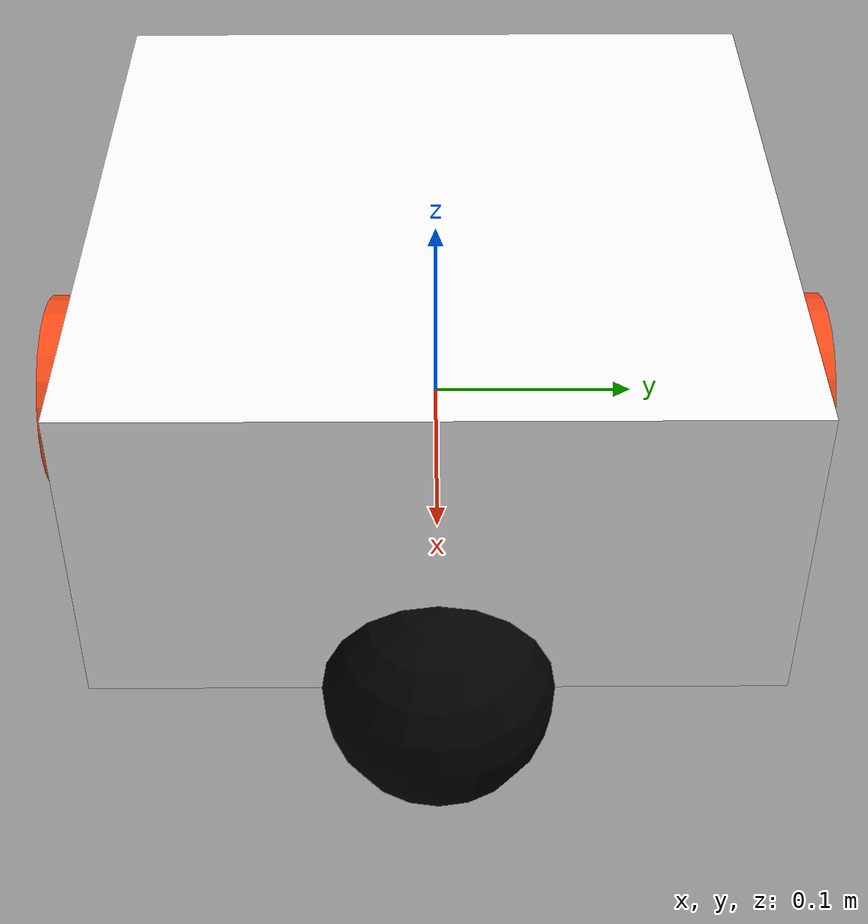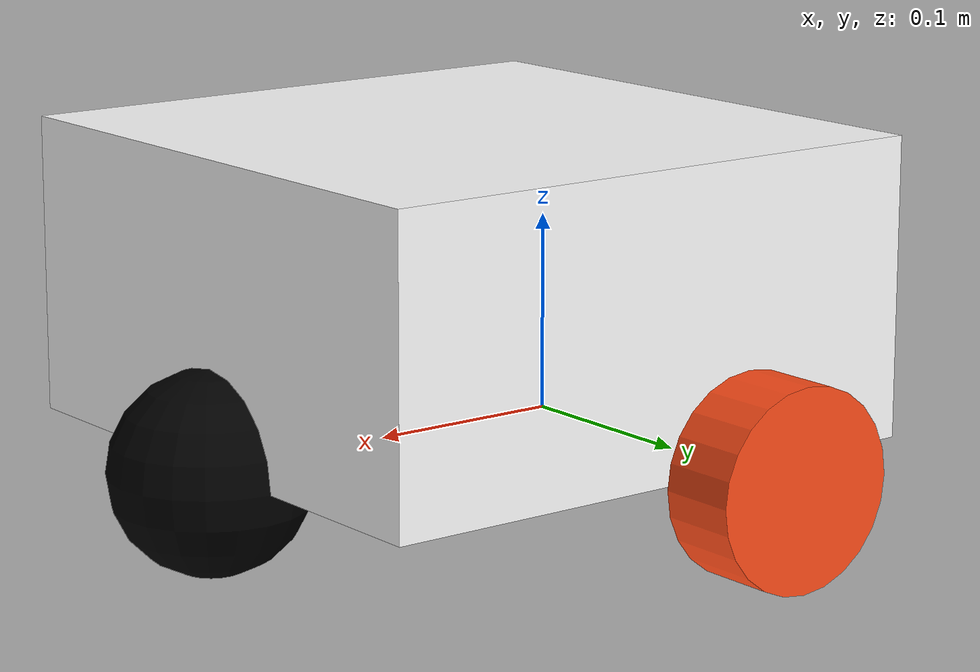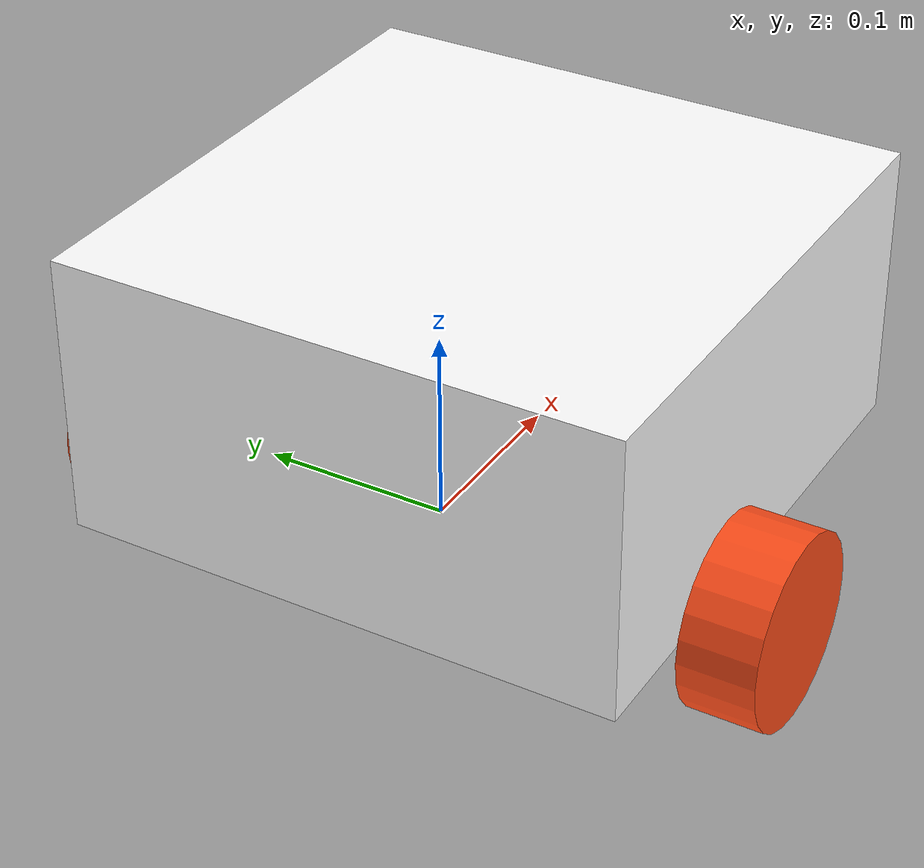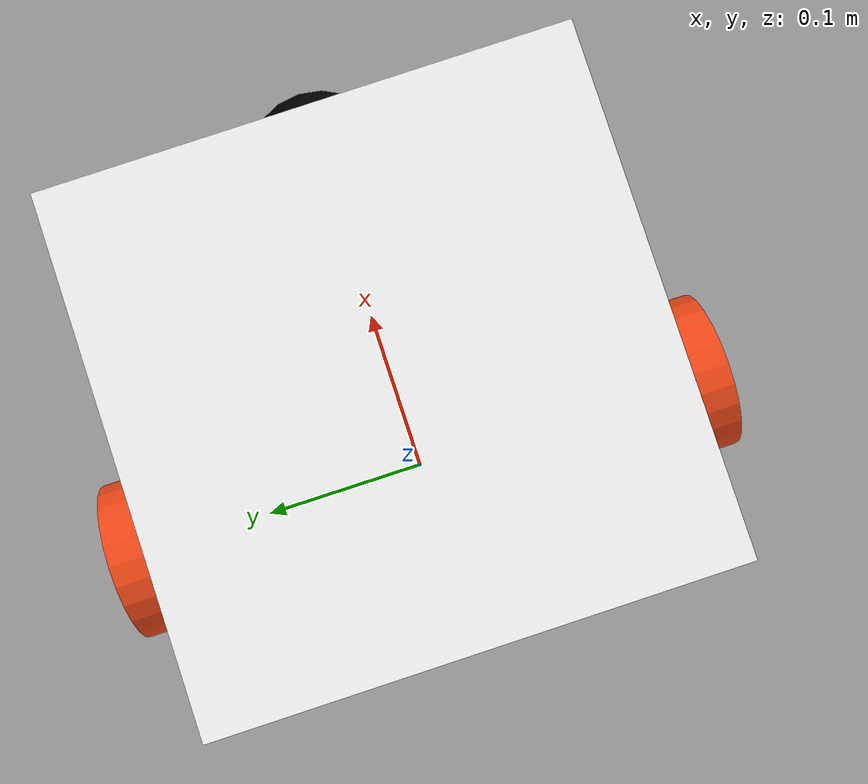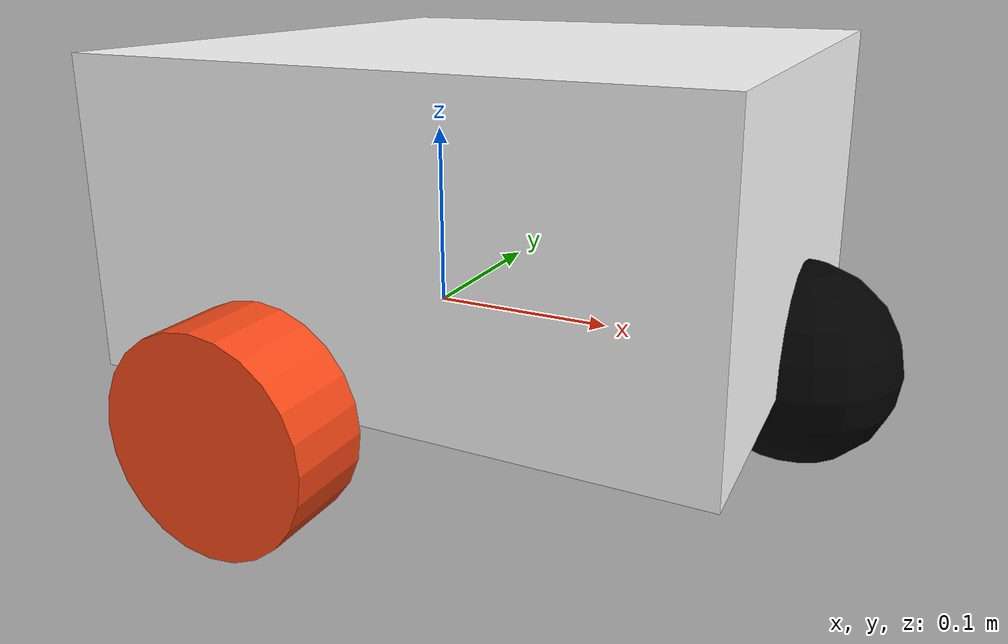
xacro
<?xml version="1.0"?>
<robot xmlns:xacro="http://www.ros.org/wiki/xacro">

    <!-- INCLUDES -->
    <xacro:include filename="colors.xacro"/>
    <xacro:include filename="inertia_macros.xacro"/>

    <!-- BASE LINK -->
    <link name="base_link"></link>

    <!-- CHASSIS -->
    <joint name="chassis_joint" type="fixed">
        <parent link="base_link"/>
        <child link="chassis"/>
        <origin xyz="-0.1 0 0"/>
    </joint>
    <link name="chassis">
        <visual>
            <origin xyz="0.15 0 0.075"/>
            <geometry>
                <box size="0.3 0.3 0.15"/>
            </geometry>
            <material name="white"/>
        </visual>
        <collision>
            <origin xyz="0.15 0 0.075"/>
            <geometry>
                <box size="0.3 0.3 0.15"/>
            </geometry>
        </collision>
        <xacro:inertial_box mass="0.5" x="0.3" y="0.3" z="0.15" >
            <origin xyz="0.15 0 0.075" rpy="0 0 0"/>
        </xacro:inertial_box>
    </link>
    <gazebo reference="chassis">
        <material>Gazebo/White</material>
    </gazebo>

    <!-- LEFT WHEEL -->
    <joint name="left_wheel_joint" type="continuous">
        <parent link="base_link"/>
        <child link="left_wheel" />
        <origin xyz="0 0.175 0" rpy="-${pi/2} 0 0"/>
        <axis xyz="0.0 0.0 1" />
    </joint>

    <link name="left_wheel">
        <visual>
            <geometry>
                <cylinder radius="0.05" length="0.04"/>
            </geometry>
            <material name="orange"/>
        </visual>
        <collision>
            <geometry>
                <cylinder radius="0.05" length="0.04"/>
            </geometry>
        </collision>
        <xacro:inertial_cylinder mass="0.1" length="0.04" radius="0.05">
            <origin xyz="0 0 0" rpy="0 0 0"/>
        </xacro:inertial_cylinder>
    </link>
    <gazebo reference="left_wheel">
        <material>Gazebo/Blue</material>
    </gazebo>

    <!-- RIGHT WHEEL -->
    <joint name="right_wheel_joint" type="continuous">
        <parent link="base_link"/>
        <child link="right_wheel"/>
        <origin rpy="${pi/2} 0.0 0" xyz="0.0 -0.175 0.0"/>
        <axis xyz="0.0 0.0 -1"/>
    </joint>
    <link name="right_wheel">
        <visual>
            <geometry>
                <cylinder radius="0.05" length="0.04"/>
            </geometry>
            <material name="orange"/>
        </visual>
        <collision>
            <geometry>
                <cylinder radius="0.05" length="0.04"/>
            </geometry>
        </collision>
        <xacro:inertial_cylinder mass="0.1" length="0.04" radius="0.05">
            <origin xyz="0 0 0" rpy="0 0 0"/>
        </xacro:inertial_cylinder>
    </link>
    <gazebo reference="right_wheel">
        <material>Gazebo/Blue</material>
    </gazebo>

    <!-- CASTER WHEEL -->
    <joint name="caster_wheel_join" type="fixed">
        <parent link="chassis"/>
        <child link="caster_wheel"/>
        <origin xyz="0.3 0.0 0"/>
    </joint>
    <link name="caster_wheel">
        <visual>
            <geometry>
                <sphere radius="0.05"/>
            </geometry>
            <material name="black" />
        </visual>
         <collision>
            <geometry>
                <sphere radius="0.05"/>
            </geometry>
        </collision>
        <xacro:inertial_sphere mass="0.1" radius="0.05">
            <origin xyz="0 0 0" rpy="0 0 0"/>
        </xacro:inertial_sphere>
    </link>
    <gazebo reference="caster_wheel">
        <material>Gazebo/Black</material>
        <mu1 value="0.001"/>
        <mu2 value="0.001"/>
    </gazebo>

</robot>

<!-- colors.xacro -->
<robot xmlns:xacro="http://www.ros.org/wiki/xacro">
    <material name="white">
        <color rgba="1 1 1 1"/>
    </material>
    <material name="orange">
        <color rgba="1 0.3 0.1 1"/>
    </material>
    <material name="blue">
        <color rgba="0.2 0.2 1 1"/>
    </material>
    <material name="black">
        <color rgba="0 0 0 1"/>
    </material>
</robot>
